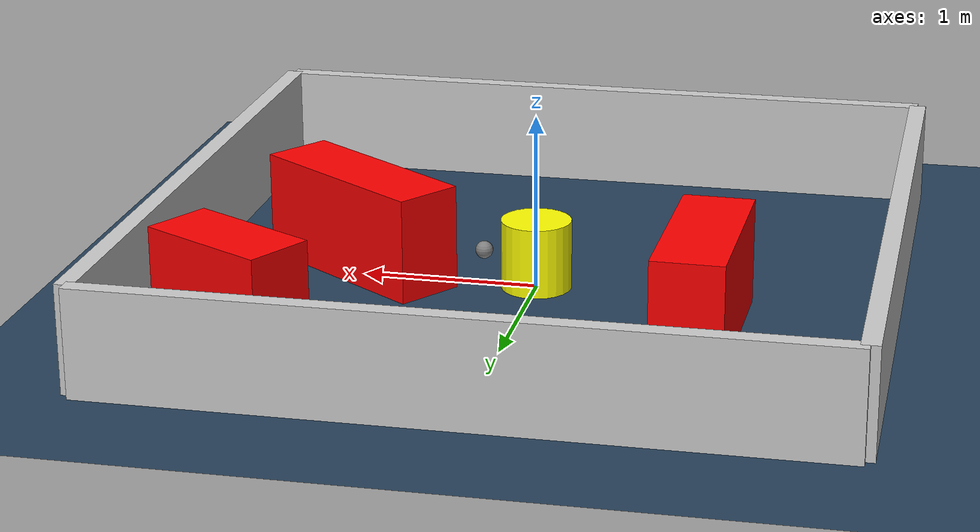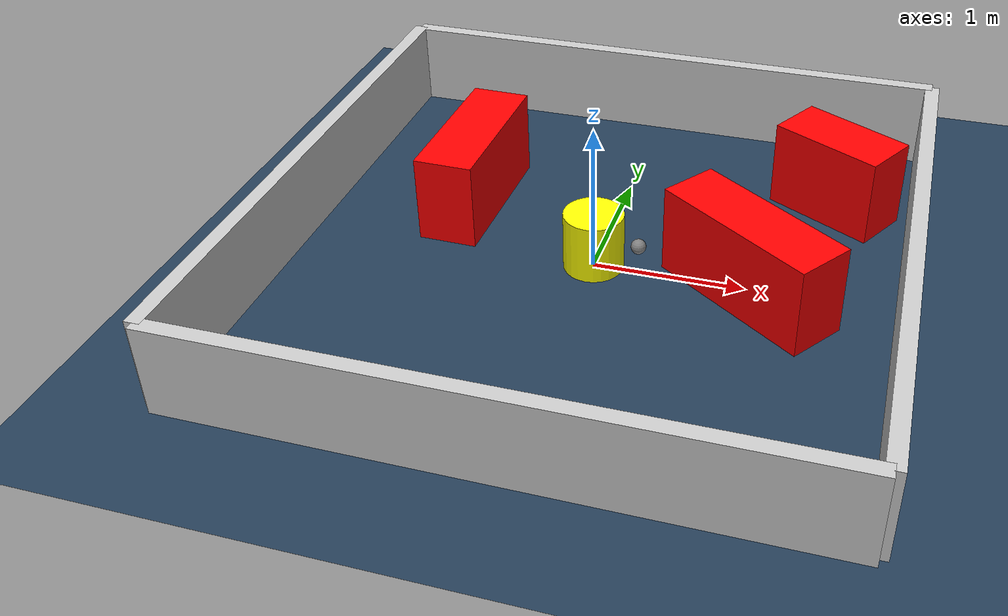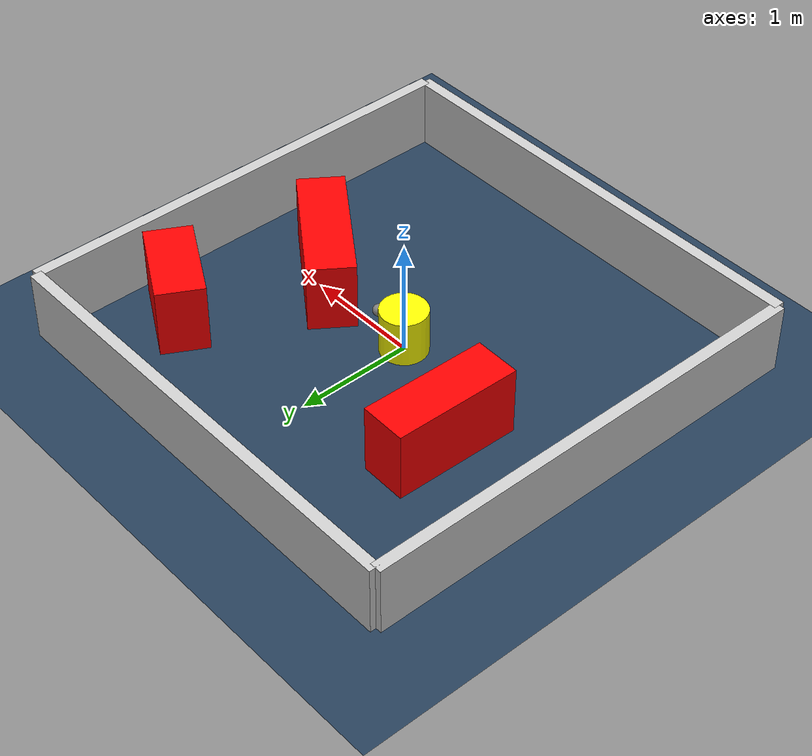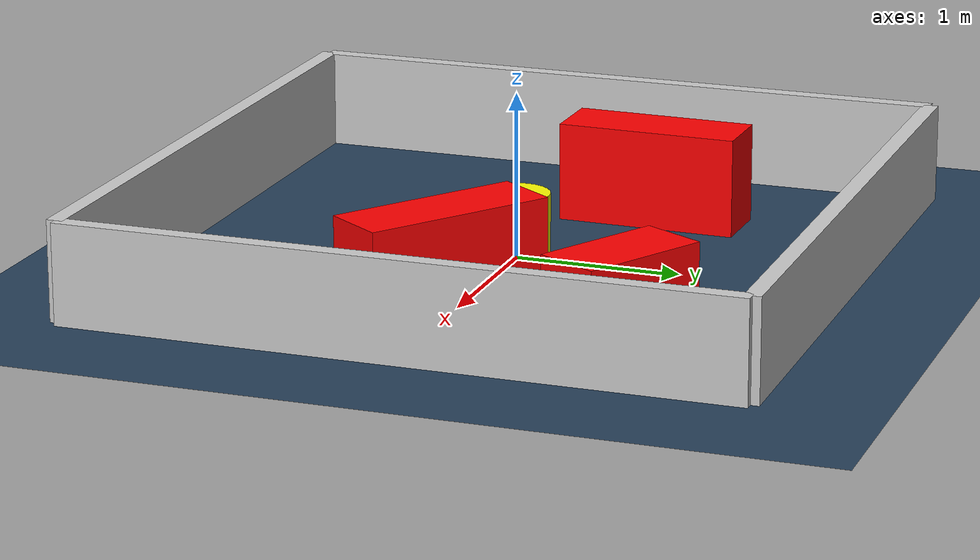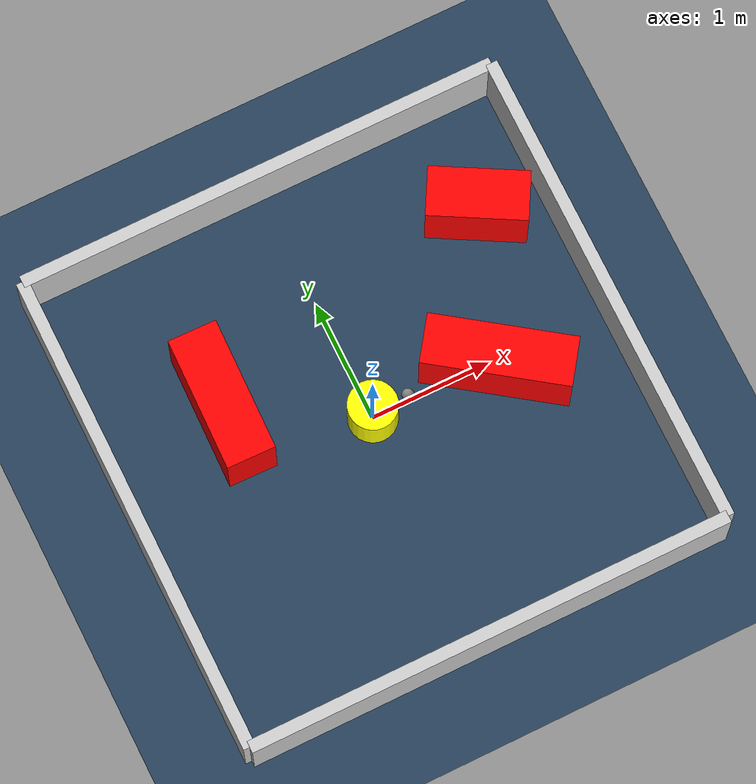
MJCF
<?xml version="1.0" ?>
<mujoco model="generated_environment">
  <option timestep="0.01" integrator="RK4" cone="elliptic"/>
  <default>
    <geom density="1"/>
  </default>
  <asset>
    <texture builtin="gradient" height="3072" rgb1="0.3 0.5 0.7" rgb2="0 0 0" type="skybox" width="512"/>
    <texture builtin="checker" height="300" mark="edge" markrgb="0.8 0.8 0.8" name="groundplane" rgb1="0.2 0.3 0.4" rgb2="0.1 0.2 0.3" type="2d" width="300"/>
    <material name="groundplane" reflectance="0.2" texrepeat="5 5" texture="groundplane" texuniform="true"/>
    <material name="robot" rgba="0.0 1.0 0.0 1"/>
  </asset>
  <worldbody>
    <light dir="0 0 -1" directional="true" pos="0 0 1.5"/>
    <geom condim="4" friction="1.0 0.005 0.001" material="groundplane" name="floor" size="0 0 0.05" type="plane"/>
    <body name="walls">
      <geom name="wall_1" condim="4" pos="-2.0 0.0 0.3" rgba="0.800000011920929 0.800000011920929 0.800000011920929 1.0" size="0.05 2.0 0.3" type="box"/>
      <geom name="wall_2" condim="4" pos="2.0 0.0 0.3" rgba="0.800000011920929 0.800000011920929 0.800000011920929 1.0" size="0.05 2.0 0.3" type="box"/>
      <geom name="wall_3" condim="4" pos="0.0 -2.0 0.3" rgba="0.800000011920929 0.800000011920929 0.800000011920929 1.0" size="2.0 0.05 0.3" type="box"/>
      <geom name="wall_4" condim="4" pos="0.0 2.0 0.3" rgba="0.800000011920929 0.800000011920929 0.800000011920929 1.0" size="2.0 0.05 0.3" type="box"/>
    </body>
    <body name="robot">
      <joint name="joint_x" type="slide" pos="0 0 0" axis="1 0 0"/>
      <joint name="joint_y" type="slide" pos="0 0 0" axis="0 1 0"/>
      <geom name="robot" type="sphere" pos="0.3 0.0 0.2" size="0.05" mass="5." friction="1.0 0.005 0.0001" condim="4" rgba="0.5 0.5 0.5 1.0"/>
      <site name="sensor_ball"/>
    </body>
    <body name="obstacle_movable_1">
      <geom name="obstacle_movable_1" condim="4" pos="0.0 0.0 0.2" euler="0 0 0.0" friction="1.0 0.005 0.001" rgba="1.0 1.0 0.0 1.0" size="0.2 0.2 0.0" type="cylinder" mass="0.1"/>
      <joint type="free"/>
    </body>
    <body name="obstacle_2_static">
      <geom name="obstacle_2_static" condim="4" pos="1.0338607004009652 -0.08004742643562746 0.3" euler="0 0 324.6570352972271" friction="1.0 0.005 0.001" rgba="1 0 0 1" size="0.5893200532462533 0.2 0.3" type="box"/>
    </body>
    <body name="obstacle_3_static">
      <geom name="obstacle_3_static" condim="4" pos="-1.0141189365318475 0.5359496660252863 0.3" euler="0 0 268.7894628122691" friction="1.0 0.005 0.001" rgba="1 0 0 1" size="0.5472551112706041 0.2 0.3" type="box"/>
    </body>
    <body name="obstacle_4_static">
      <geom name="obstacle_4_static" condim="4" pos="1.4410495880475376 1.1042100423412908 0.3" euler="0 0 330.9217795803373" friction="1.0 0.005 0.001" rgba="1 0 0 1" size="0.3988224703501316 0.2 0.3" type="box"/>
    </body>
  </worldbody>
  <actuator>
    <motor name="actuator_x" joint="joint_x" gear="1" ctrlrange="-1 1"/>
    <motor name="actuator_y" joint="joint_y" gear="1" ctrlrange="-1 1"/>
  </actuator>
</mujoco>
